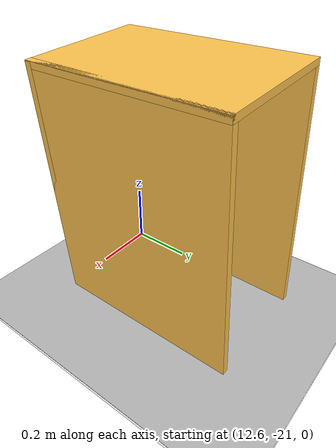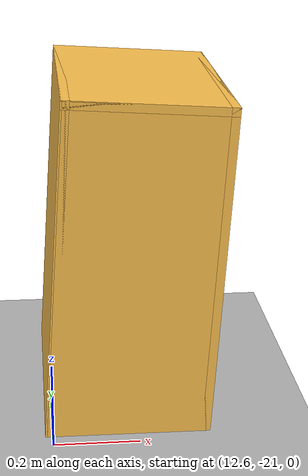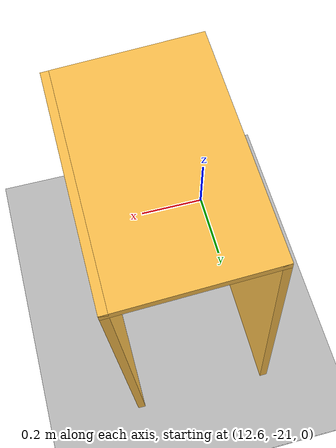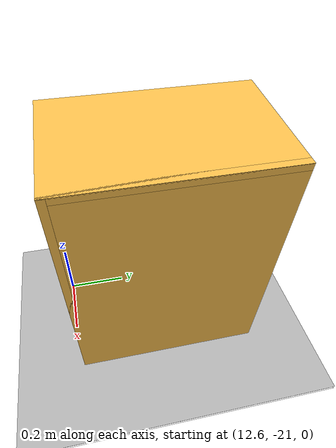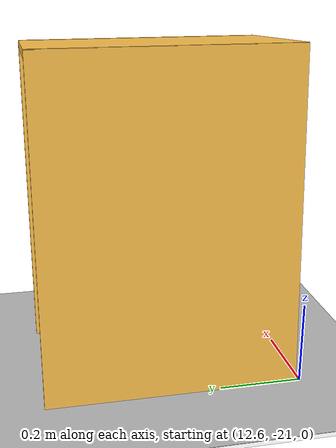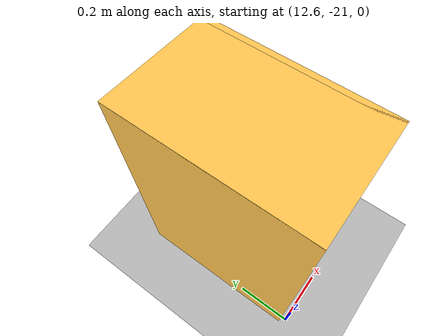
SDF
<sdf version="1.7">
 <world name="default">
  <model name="ground_plane">
   <static>1</static>
   <link name="link">
    <collision name="collision">
     <geometry><plane><normal>0 0 1</normal><size>100 100</size></plane></geometry>
     <surface><friction><ode><mu>100</mu><mu2>50</mu2></ode></friction></surface>
    </collision>
    <visual name="visual">
     <cast_shadows>0</cast_shadows>
     <geometry><plane><normal>0 0 1</normal><size>100 100</size></plane></geometry>
     <material>
      <script><uri>file://media/materials/scripts/gazebo.material</uri><name>Gazebo/Grey</name></script>
     </material>
    </visual>
   </link>
  </model>
  <model name="Fridge_Cabinet_33x15">
   <link name="Wall_17">
    <pose>0 0 0.01 0 -0 0</pose>
    <inertial>
     <mass>4.8627</mass>
     <inertia><ixx>0.146</ixx><iyy>0.4318</iyy><izz>0.2861</izz><ixy>0</ixy><ixz>0</ixz><iyz>0</iyz></inertia>
    </inertial>
    <collision name="Wall_17_Collision"><geometry><box><size>0.84 0.6 0.02</size></box></geometry></collision>
    <visual name="Wall_17_Visual">
     <geometry><box><size>0.84 0.6 0.02</size></box></geometry>
     <material>
      <script><uri>file://media/materials/scripts/gazebo.material</uri><name>Gazebo/Grey</name></script>
      <ambient>1 0.764706 0.305882 1</ambient>
     </material>
    </visual>
   </link>
   <joint name="17_21" type="fixed">
    <pose>0.42 0 0 0 -0 0</pose>
    <parent>Wall_21</parent>
    <child>Wall_17</child>
    <axis><xyz>1 0 0</xyz><limit><lower>-1e+16</lower><upper>1e+16</upper></limit></axis>
   </joint>
   <joint name="17_19" type="fixed">
    <pose>-0.42 0 0 0 -0 0</pose>
    <parent>Wall_19</parent>
    <child>Wall_17</child>
    <axis><xyz>1 0 0</xyz><limit><lower>-1e+16</lower><upper>1e+16</upper></limit></axis>
   </joint>
   <joint name="17_25" type="fixed">
    <pose>0 -0.3 0 0 -0 0</pose>
    <parent>Wall_25</parent>
    <child>Wall_17</child>
    <axis><xyz>0 1 0</xyz><limit><lower>-1e+16</lower><upper>1e+16</upper></limit></axis>
   </joint>
   <link name="Wall_19">
    <pose>-0.41 0 0.192 0 -0 0</pose>
    <inertial>
     <mass>2.223</mass>
     <inertia><ixx>0.0668</ixx><iyy>0.094</iyy><izz>0.0274</izz><ixy>0</ixy><ixz>0</ixz><iyz>0</iyz></inertia>
    </inertial>
    <collision name="Wall_19_Collision"><geometry><box><size>0.02 0.6 0.384</size></box></geometry></collision>
    <visual name="Wall_19_Visual">
     <geometry><box><size>0.02 0.6 0.384</size></box></geometry>
     <material>
      <script><uri>file://media/materials/scripts/gazebo.material</uri><name>Gazebo/Grey</name></script>
      <ambient>1 0.764706 0.305882 1</ambient>
     </material>
    </visual>
   </link>
   <link name="Wall_21">
    <pose>0.41 0 0.192 0 -0 0</pose>
    <inertial>
     <mass>2.223</mass>
     <inertia><ixx>0.0668</ixx><iyy>0.094</iyy><izz>0.0274</izz><ixy>0</ixy><ixz>0</ixz><iyz>0</iyz></inertia>
    </inertial>
    <collision name="Wall_21_Collision"><geometry><box><size>0.02 0.6 0.384</size></box></geometry></collision>
    <visual name="Wall_21_Visual">
     <geometry><box><size>0.02 0.6 0.384</size></box></geometry>
     <material>
      <script><uri>file://media/materials/scripts/gazebo.material</uri><name>Gazebo/Grey</name></script>
      <ambient>1 0.764706 0.305882 1</ambient>
     </material>
    </visual>
   </link>
   <link name="Wall_23">
    <pose>0 0 0.374 0 -0 0</pose>
    <inertial>
     <mass>4.8627</mass>
     <inertia><ixx>0.146</ixx><iyy>0.4318</iyy><izz>0.2861</izz><ixy>0</ixy><ixz>0</ixz><iyz>0</iyz></inertia>
    </inertial>
    <collision name="Wall_23_Collision"><geometry><box><size>0.84 0.6 0.02</size></box></geometry></collision>
    <visual name="Wall_23_Visual">
     <geometry><box><size>0.84 0.6 0.02</size></box></geometry>
     <material>
      <script><uri>file://media/materials/scripts/gazebo.material</uri><name>Gazebo/Grey</name></script>
      <ambient>1 0.764706 0.305882 1</ambient>
     </material>
    </visual>
   </link>
   <joint name="23_21" type="fixed">
    <pose>0.42 0 0 0 -0 0</pose>
    <parent>Wall_21</parent>
    <child>Wall_23</child>
    <axis><xyz>0 0 1</xyz><limit><lower>-1e+16</lower><upper>1e+16</upper></limit></axis>
   </joint>
   <joint name="23_19" type="fixed">
    <pose>-0.42 0 0 0 -0 0</pose>
    <parent>Wall_19</parent>
    <child>Wall_23</child>
    <axis><xyz>0 0 1</xyz><limit><lower>-1e+16</lower><upper>1e+16</upper></limit></axis>
   </joint>
   <joint name="23_25" type="fixed">
    <pose>0 -0.3 0 0 -0 0</pose>
    <parent>Wall_25</parent>
    <child>Wall_23</child>
    <axis><xyz>0 0 1</xyz><limit><lower>-1e+16</lower><upper>1e+16</upper></limit></axis>
   </joint>
   <link name="Wall_25">
    <pose>0 -0.29 0.19 0 -0 0</pose>
    <inertial>
     <mass>3.0651</mass>
     <inertia><ixx>0.037</ixx><iyy>0.1786</iyy><izz>0.2154</izz><ixy>0</ixy><ixz>0</ixz><iyz>0</iyz></inertia>
    </inertial>
    <collision name="Wall_25_Collision"><geometry><box><size>0.836 0.02 0.38</size></box></geometry></collision>
    <visual name="Wall_25_Visual">
     <geometry><box><size>0.836 0.02 0.38</size></box></geometry>
     <material>
      <script><uri>file://media/materials/scripts/gazebo.material</uri><name>Gazebo/Grey</name></script>
      <ambient>1 0.764706 0.305882 1</ambient>
     </material>
    </visual>
   </link>
   <joint name="25_21" type="fixed">
    <pose>0.42 0 0 0 -0 0</pose>
    <parent>Wall_21</parent>
    <child>Wall_25</child>
    <axis><xyz>0 1 0</xyz><limit><lower>-1e+16</lower><upper>1e+16</upper></limit></axis>
   </joint>
   <joint name="25_19" type="fixed">
    <pose>-0.42 0 0 0 -0 0</pose>
    <parent>Wall_19</parent>
    <child>Wall_25</child>
    <axis><xyz>0 1 0</xyz><limit><lower>-1e+16</lower><upper>1e+16</upper></limit></axis>
   </joint>
   <static>1</static>
   <pose>12.9872 -20.6819 0.361941 0 -1.50819 0</pose>
  </model>
  <model name="Floor_room_1">
   <link name="main">
    <pose>0 0 0.01 0 -0 0</pose>
    <collision name="main_Collision"><geometry><box><size>20 20 0.001</size></box></geometry></collision>
    <visual name="main_Visual">
     <geometry><box><size>20 20 0.001</size></box></geometry>
     <material>
      <script>
       <uri>model://Floor_room/materials/scripts</uri>
       <uri>model://Floor_room/materials/textures</uri>
       <name>floor_room</name>
      </script>
     </material>
    </visual>
   </link>
   <static>1</static>
   <pose>14.222 -19.4904 0 0 -0 0</pose>
  </model>
 </world>
</sdf>
